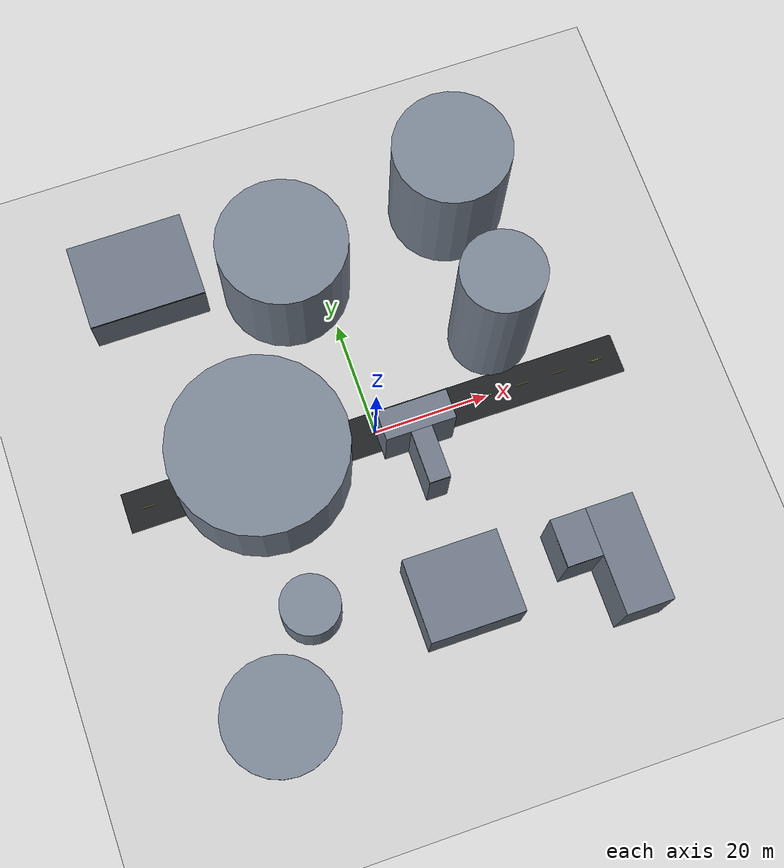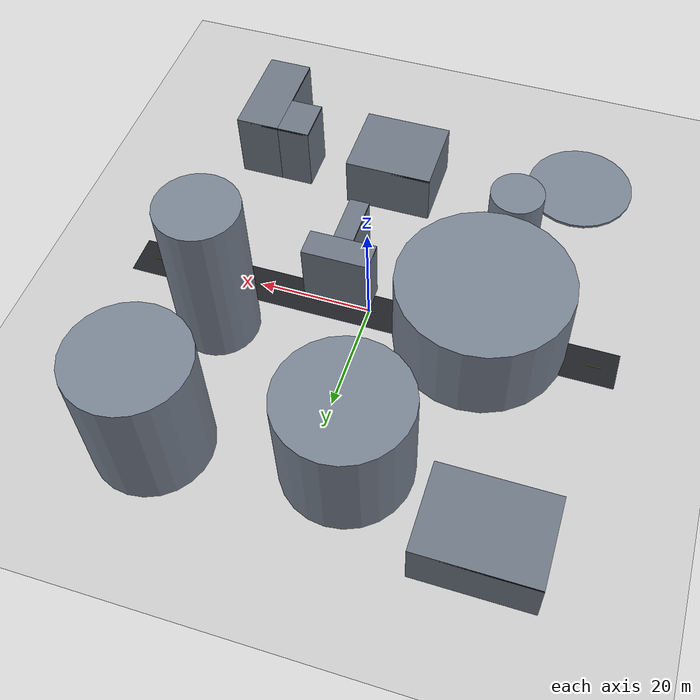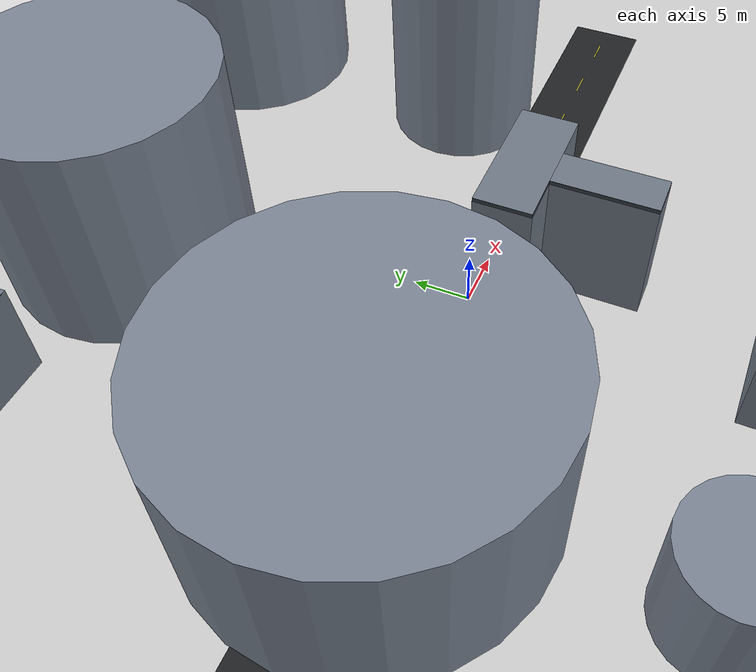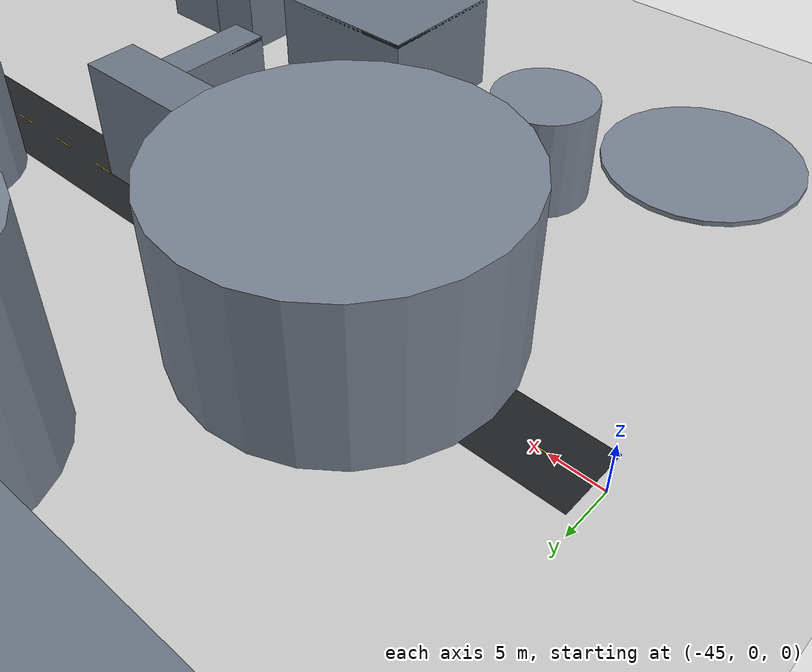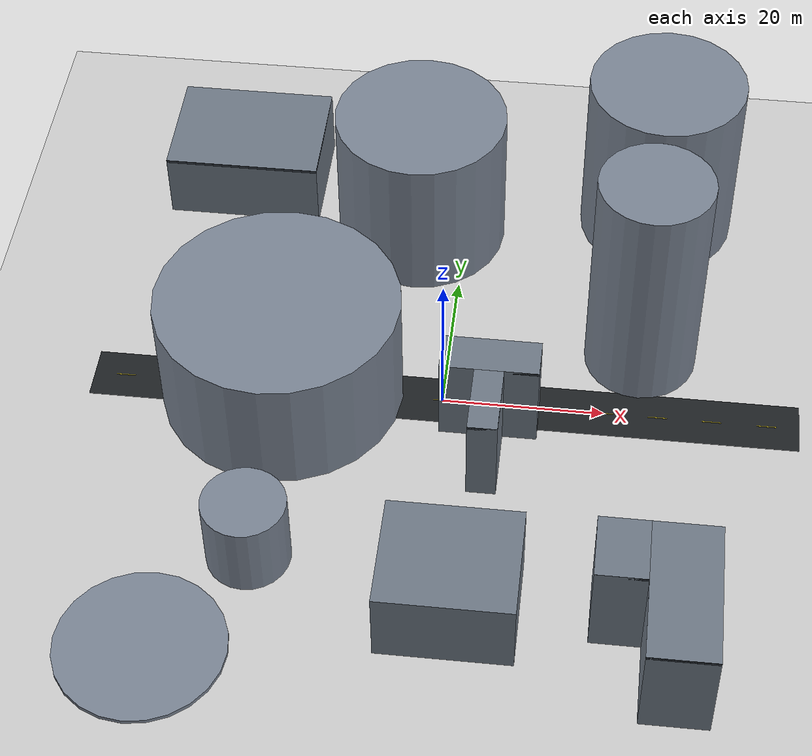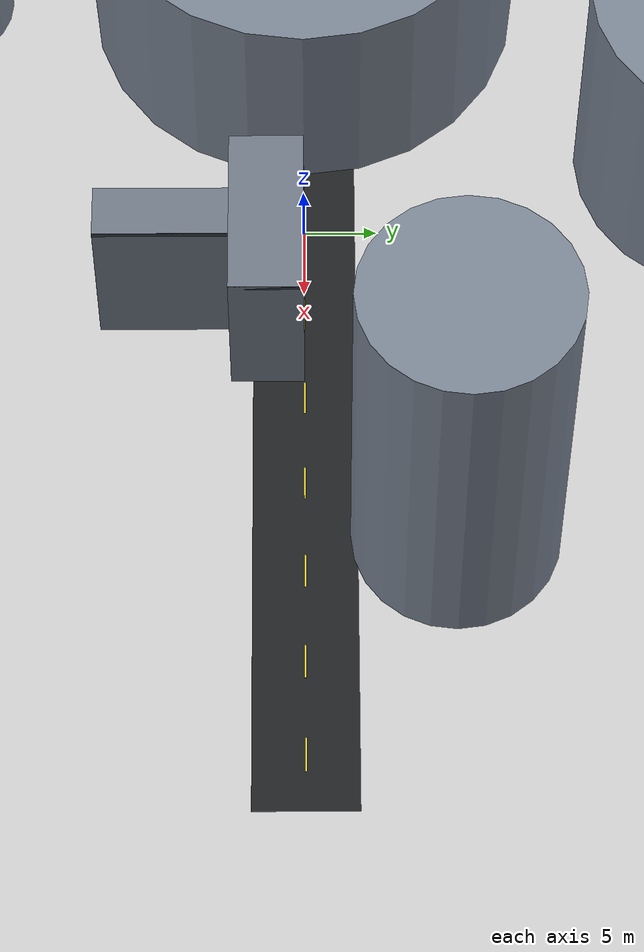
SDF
<?xml version="1.0"?>
<sdf version="1.6"><world name="logistics_5_industrial_transport">
  <physics name="default_physics" type="ode"><max_step_size>0.004</max_step_size><real_time_factor>1</real_time_factor><real_time_update_rate>250</real_time_update_rate><magnetic_field>6.0e-6 2.3e-5 -4.2e-5</magnetic_field></physics>
  <gravity>0 0 -9.8066</gravity>
  <include><uri>model://sun</uri></include>
  <include><uri>model://ground_plane</uri></include>
  <spherical_coordinates><surface_model>EARTH_WGS84</surface_model><latitude_deg>47.397742</latitude_deg><longitude_deg>8.545594</longitude_deg><elevation>488</elevation><heading_deg>0</heading_deg></spherical_coordinates>
<model name="service_road"><static>true</static><pose>0.000 0.000 0.012 0.000 0.000 0.000</pose><link name="link"><visual name="visual"><cast_shadows>false</cast_shadows><geometry><box><size>88.000 7.0 0.02</size></box></geometry><material><ambient>0.12 0.13 0.14 1</ambient><diffuse>0.12 0.13 0.14 1</diffuse></material></visual></link></model>
<model name="road_mark_00"><static>true</static><pose>-40.000 0.000 0.026 0.000 0.000 0.000</pose><link name="link"><visual name="visual"><cast_shadows>false</cast_shadows><geometry><box><size>2.4 0.12 0.012</size></box></geometry><material><ambient>0.92 0.84 0.18 1</ambient><diffuse>0.92 0.84 0.18 1</diffuse></material></visual></link></model>
<model name="road_mark_01"><static>true</static><pose>-33.333 0.000 0.026 0.000 0.000 0.000</pose><link name="link"><visual name="visual"><cast_shadows>false</cast_shadows><geometry><box><size>2.4 0.12 0.012</size></box></geometry><material><ambient>0.92 0.84 0.18 1</ambient><diffuse>0.92 0.84 0.18 1</diffuse></material></visual></link></model>
<model name="road_mark_02"><static>true</static><pose>-26.667 0.000 0.026 0.000 0.000 0.000</pose><link name="link"><visual name="visual"><cast_shadows>false</cast_shadows><geometry><box><size>2.4 0.12 0.012</size></box></geometry><material><ambient>0.92 0.84 0.18 1</ambient><diffuse>0.92 0.84 0.18 1</diffuse></material></visual></link></model>
<model name="road_mark_03"><static>true</static><pose>-20.000 0.000 0.026 0.000 0.000 0.000</pose><link name="link"><visual name="visual"><cast_shadows>false</cast_shadows><geometry><box><size>2.4 0.12 0.012</size></box></geometry><material><ambient>0.92 0.84 0.18 1</ambient><diffuse>0.92 0.84 0.18 1</diffuse></material></visual></link></model>
<model name="road_mark_04"><static>true</static><pose>-13.333 0.000 0.026 0.000 0.000 0.000</pose><link name="link"><visual name="visual"><cast_shadows>false</cast_shadows><geometry><box><size>2.4 0.12 0.012</size></box></geometry><material><ambient>0.92 0.84 0.18 1</ambient><diffuse>0.92 0.84 0.18 1</diffuse></material></visual></link></model>
<model name="road_mark_05"><static>true</static><pose>-6.667 0.000 0.026 0.000 0.000 0.000</pose><link name="link"><visual name="visual"><cast_shadows>false</cast_shadows><geometry><box><size>2.4 0.12 0.012</size></box></geometry><material><ambient>0.92 0.84 0.18 1</ambient><diffuse>0.92 0.84 0.18 1</diffuse></material></visual></link></model>
<model name="road_mark_06"><static>true</static><pose>0.000 0.000 0.026 0.000 0.000 0.000</pose><link name="link"><visual name="visual"><cast_shadows>false</cast_shadows><geometry><box><size>2.4 0.12 0.012</size></box></geometry><material><ambient>0.92 0.84 0.18 1</ambient><diffuse>0.92 0.84 0.18 1</diffuse></material></visual></link></model>
<model name="road_mark_07"><static>true</static><pose>6.667 0.000 0.026 0.000 0.000 0.000</pose><link name="link"><visual name="visual"><cast_shadows>false</cast_shadows><geometry><box><size>2.4 0.12 0.012</size></box></geometry><material><ambient>0.92 0.84 0.18 1</ambient><diffuse>0.92 0.84 0.18 1</diffuse></material></visual></link></model>
<model name="road_mark_08"><static>true</static><pose>13.333 0.000 0.026 0.000 0.000 0.000</pose><link name="link"><visual name="visual"><cast_shadows>false</cast_shadows><geometry><box><size>2.4 0.12 0.012</size></box></geometry><material><ambient>0.92 0.84 0.18 1</ambient><diffuse>0.92 0.84 0.18 1</diffuse></material></visual></link></model>
<model name="road_mark_09"><static>true</static><pose>20.000 0.000 0.026 0.000 0.000 0.000</pose><link name="link"><visual name="visual"><cast_shadows>false</cast_shadows><geometry><box><size>2.4 0.12 0.012</size></box></geometry><material><ambient>0.92 0.84 0.18 1</ambient><diffuse>0.92 0.84 0.18 1</diffuse></material></visual></link></model>
<model name="road_mark_10"><static>true</static><pose>26.667 0.000 0.026 0.000 0.000 0.000</pose><link name="link"><visual name="visual"><cast_shadows>false</cast_shadows><geometry><box><size>2.4 0.12 0.012</size></box></geometry><material><ambient>0.92 0.84 0.18 1</ambient><diffuse>0.92 0.84 0.18 1</diffuse></material></visual></link></model>
<model name="road_mark_11"><static>true</static><pose>33.333 0.000 0.026 0.000 0.000 0.000</pose><link name="link"><visual name="visual"><cast_shadows>false</cast_shadows><geometry><box><size>2.4 0.12 0.012</size></box></geometry><material><ambient>0.92 0.84 0.18 1</ambient><diffuse>0.92 0.84 0.18 1</diffuse></material></visual></link></model>
<model name="road_mark_12"><static>true</static><pose>40.000 0.000 0.026 0.000 0.000 0.000</pose><link name="link"><visual name="visual"><cast_shadows>false</cast_shadows><geometry><box><size>2.4 0.12 0.012</size></box></geometry><material><ambient>0.92 0.84 0.18 1</ambient><diffuse>0.92 0.84 0.18 1</diffuse></material></visual></link></model>
<model name="obstacle_00_tank_a"><static>true</static><pose>-20.000 0.000 8.000 0 0 0</pose><link name="link"><collision name="collision"><geometry><cylinder><radius>15.000</radius><length>16.000</length></cylinder></geometry></collision><visual name="visual"><geometry><cylinder><radius>15.000</radius><length>16.000</length></cylinder></geometry><material><ambient>0.48 0.52 0.58 1</ambient><diffuse>0.48 0.52 0.58 1</diffuse></material></visual></link></model>
<model name="obstacle_01_tank_b"><static>true</static><pose>-20.000 -26.000 5.000 0 0 0</pose><link name="link"><collision name="collision"><geometry><cylinder><radius>5.000</radius><length>10.000</length></cylinder></geometry></collision><visual name="visual"><geometry><cylinder><radius>5.000</radius><length>10.000</length></cylinder></geometry><material><ambient>0.48 0.52 0.58 1</ambient><diffuse>0.48 0.52 0.58 1</diffuse></material></visual></link></model>
<model name="obstacle_02_factory_part_0"><static>true</static><pose>30.000 -35.000 6.500 0 0 0</pose><link name="link"><collision name="collision"><geometry><box><size>8.000 18.000 13.000</size></box></geometry></collision><visual name="visual"><geometry><box><size>8.000 18.000 13.000</size></box></geometry><material><ambient>0.43 0.47 0.52 1</ambient><diffuse>0.43 0.47 0.52 1</diffuse></material></visual></link></model>
<model name="obstacle_02_factory_part_0_roof"><static>true</static><pose>30.000 -35.000 12.820 0.000 0.000 0.000</pose><link name="link"><visual name="visual"><cast_shadows>false</cast_shadows><geometry><box><size>8.000 18.000 0.360</size></box></geometry><material><ambient>0.20 0.23 0.27 1</ambient><diffuse>0.20 0.23 0.27 1</diffuse></material></visual></link></model>
<model name="obstacle_02_factory_part_1"><static>true</static><pose>23.000 -30.000 6.500 0 0 0</pose><link name="link"><collision name="collision"><geometry><box><size>6.000 8.000 13.000</size></box></geometry></collision><visual name="visual"><geometry><box><size>6.000 8.000 13.000</size></box></geometry><material><ambient>0.43 0.47 0.52 1</ambient><diffuse>0.43 0.47 0.52 1</diffuse></material></visual></link></model>
<model name="obstacle_02_factory_part_1_roof"><static>true</static><pose>23.000 -30.000 12.820 0.000 0.000 0.000</pose><link name="link"><visual name="visual"><cast_shadows>false</cast_shadows><geometry><box><size>6.000 8.000 0.360</size></box></geometry><material><ambient>0.20 0.23 0.27 1</ambient><diffuse>0.20 0.23 0.27 1</diffuse></material></visual></link></model>
<model name="obstacle_03_cooling_tower"><static>true</static><pose>25.000 35.000 12.000 0 0 0</pose><link name="link"><collision name="collision"><geometry><cylinder><radius>10.000</radius><length>24.000</length></cylinder></geometry></collision><visual name="visual"><geometry><cylinder><radius>10.000</radius><length>24.000</length></cylinder></geometry><material><ambient>0.48 0.52 0.58 1</ambient><diffuse>0.48 0.52 0.58 1</diffuse></material></visual></link></model>
<model name="obstacle_04_warehouse"><static>true</static><pose>4.000 -31.000 5.000 0 0 0</pose><link name="link"><collision name="collision"><geometry><box><size>16.000 14.000 10.000</size></box></geometry></collision><visual name="visual"><geometry><box><size>16.000 14.000 10.000</size></box></geometry><material><ambient>0.43 0.47 0.52 1</ambient><diffuse>0.43 0.47 0.52 1</diffuse></material></visual></link></model>
<model name="obstacle_04_warehouse_roof"><static>true</static><pose>4.000 -31.000 9.820 0.000 0.000 0.000</pose><link name="link"><visual name="visual"><cast_shadows>false</cast_shadows><geometry><box><size>16.000 14.000 0.360</size></box></geometry><material><ambient>0.20 0.23 0.27 1</ambient><diffuse>0.20 0.23 0.27 1</diffuse></material></visual></link></model>
<model name="obstacle_05_reactor"><static>true</static><pose>-6.000 30.000 10.000 0 0 0</pose><link name="link"><collision name="collision"><geometry><cylinder><radius>11.000</radius><length>20.000</length></cylinder></geometry></collision><visual name="visual"><geometry><cylinder><radius>11.000</radius><length>20.000</length></cylinder></geometry><material><ambient>0.48 0.52 0.58 1</ambient><diffuse>0.48 0.52 0.58 1</diffuse></material></visual></link></model>
<model name="obstacle_06_control_room"><static>true</static><pose>-30.000 37.500 4.500 0 0 0</pose><link name="link"><collision name="collision"><geometry><box><size>20.000 15.000 9.000</size></box></geometry></collision><visual name="visual"><geometry><box><size>20.000 15.000 9.000</size></box></geometry><material><ambient>0.43 0.47 0.52 1</ambient><diffuse>0.43 0.47 0.52 1</diffuse></material></visual></link></model>
<model name="obstacle_06_control_room_roof"><static>true</static><pose>-30.000 37.500 8.820 0.000 0.000 0.000</pose><link name="link"><visual name="visual"><cast_shadows>false</cast_shadows><geometry><box><size>20.000 15.000 0.360</size></box></geometry><material><ambient>0.20 0.23 0.27 1</ambient><diffuse>0.20 0.23 0.27 1</diffuse></material></visual></link></model>
<model name="obstacle_07_lightning_mast"><static>true</static><pose>24.000 10.000 15.000 0 0 0</pose><link name="link"><collision name="collision"><geometry><cylinder><radius>7.000</radius><length>30.000</length></cylinder></geometry></collision><visual name="visual"><geometry><cylinder><radius>7.000</radius><length>30.000</length></cylinder></geometry><material><ambient>0.48 0.52 0.58 1</ambient><diffuse>0.48 0.52 0.58 1</diffuse></material></visual></link></model>
<model name="obstacle_08_office_part_0"><static>true</static><pose>6.000 -9.500 6.000 0 0 0</pose><link name="link"><collision name="collision"><geometry><box><size>3.600 9.000 12.000</size></box></geometry></collision><visual name="visual"><geometry><box><size>3.600 9.000 12.000</size></box></geometry><material><ambient>0.43 0.47 0.52 1</ambient><diffuse>0.43 0.47 0.52 1</diffuse></material></visual></link></model>
<model name="obstacle_08_office_part_0_roof"><static>true</static><pose>6.000 -9.500 11.820 0.000 0.000 0.000</pose><link name="link"><visual name="visual"><cast_shadows>false</cast_shadows><geometry><box><size>3.600 9.000 0.360</size></box></geometry><material><ambient>0.20 0.23 0.27 1</ambient><diffuse>0.20 0.23 0.27 1</diffuse></material></visual></link></model>
<model name="obstacle_08_office_part_1"><static>true</static><pose>6.000 -2.500 6.000 0 0 0</pose><link name="link"><collision name="collision"><geometry><box><size>12.000 5.000 12.000</size></box></geometry></collision><visual name="visual"><geometry><box><size>12.000 5.000 12.000</size></box></geometry><material><ambient>0.43 0.47 0.52 1</ambient><diffuse>0.43 0.47 0.52 1</diffuse></material></visual></link></model>
<model name="obstacle_08_office_part_1_roof"><static>true</static><pose>6.000 -2.500 11.820 0.000 0.000 0.000</pose><link name="link"><visual name="visual"><cast_shadows>false</cast_shadows><geometry><box><size>12.000 5.000 0.360</size></box></geometry><material><ambient>0.20 0.23 0.27 1</ambient><diffuse>0.20 0.23 0.27 1</diffuse></material></visual></link></model>
<model name="obstacle_09_waste_pool"><static>true</static><pose>-30.000 -40.000 0.250 0 0 0</pose><link name="link"><collision name="collision"><geometry><cylinder><radius>10.000</radius><length>0.500</length></cylinder></geometry></collision><visual name="visual"><geometry><cylinder><radius>10.000</radius><length>0.500</length></cylinder></geometry><material><ambient>0.48 0.52 0.58 1</ambient><diffuse>0.48 0.52 0.58 1</diffuse></material></visual></link></model>
<model name="start_zone"><static>true</static><pose>-40.000 0.000 -0.009 0 0 0</pose><link name="link"><visual name="visual"><cast_shadows>false</cast_shadows><geometry><cylinder><radius>1.5</radius><length>0.02</length></cylinder></geometry><material><ambient>0.1 0.8 0.1 1</ambient><diffuse>0.1 0.8 0.1 1</diffuse></material></visual></link></model>
<model name="goal_zone"><static>true</static><pose>40.000 0.000 -0.009 0 0 0</pose><link name="link"><visual name="visual"><cast_shadows>false</cast_shadows><geometry><cylinder><radius>1.5</radius><length>0.02</length></cylinder></geometry><material><ambient>0.9 0.15 0.1 1</ambient><diffuse>0.9 0.15 0.1 1</diffuse></material></visual></link></model>
</world></sdf>
